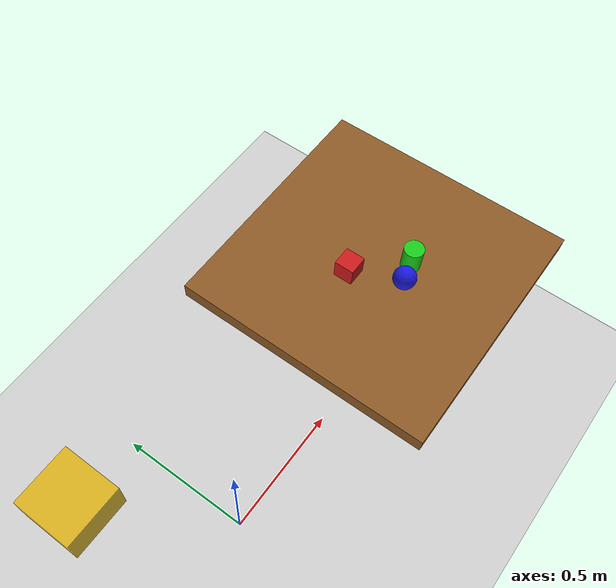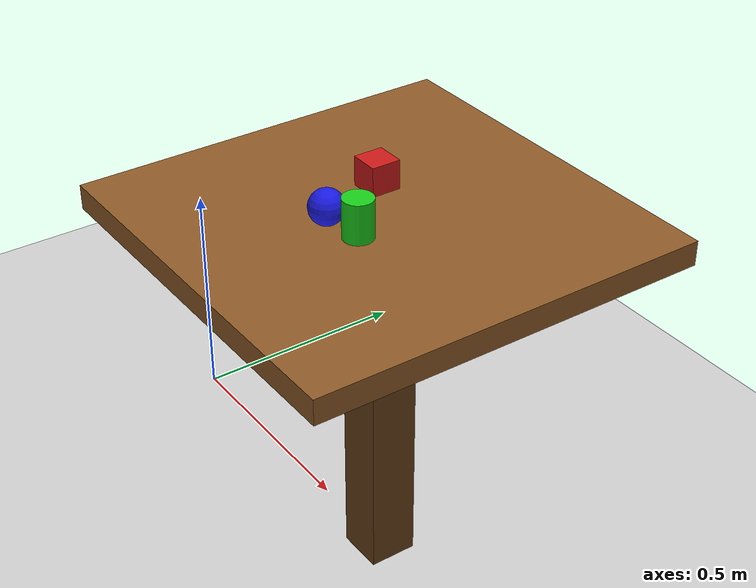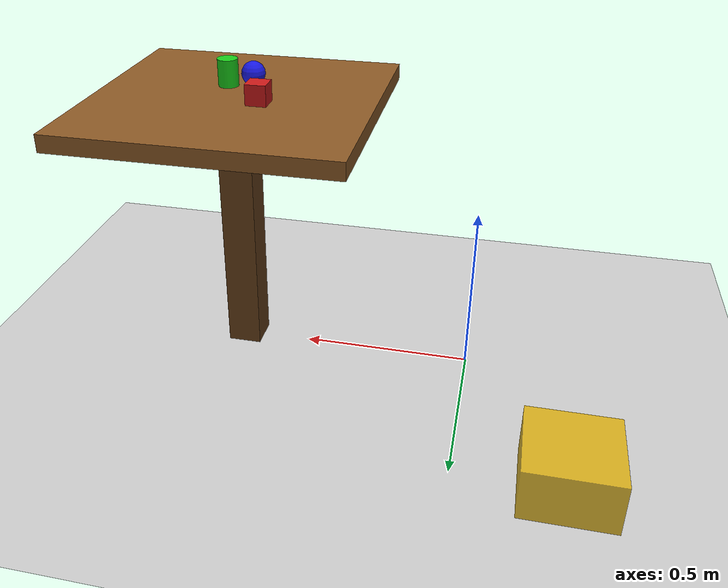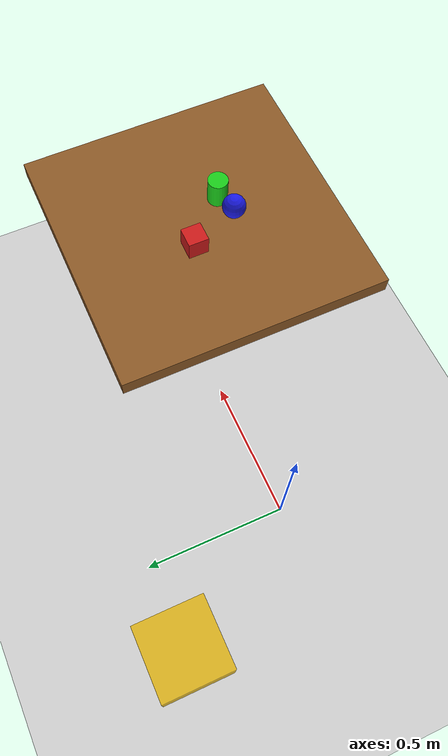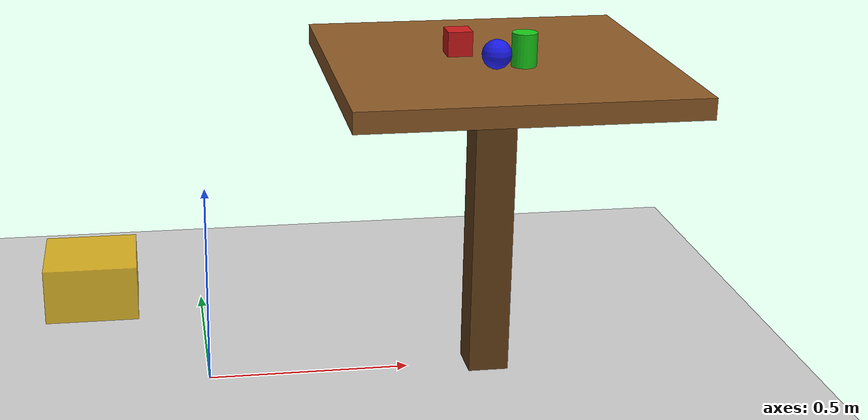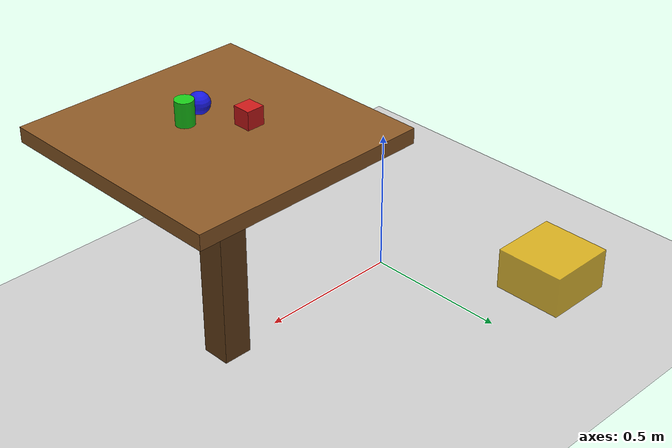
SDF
<?xml version="1.0"?>
<sdf version="1.6">
  <world name="pick_world">

    <include><uri>model://sun</uri></include>
    <include><uri>model://ground_plane</uri></include>

    <physics type="ode">
      <real_time_update_rate>1000</real_time_update_rate>
      <max_step_size>0.001</max_step_size>
      <real_time_factor>1</real_time_factor>
    </physics>

    <!-- Table top: static single-link model at surface height -->
    <model name="work_table">
      <static>true</static>
      <pose>0.7 0.0 0.775 0 0 0</pose>
      <link name="link">
        <collision name="col"><geometry><box><size>0.80 0.80 0.05</size></box></geometry></collision>
        <visual name="vis">
          <geometry><box><size>0.80 0.80 0.05</size></box></geometry>
          <material>
            <ambient>0.55 0.35 0.15 1</ambient>
            <diffuse>0.55 0.35 0.15 1</diffuse>
            <specular>0.1 0.1 0.1 1</specular>
          </material>
        </visual>
      </link>
    </model>

    <!-- Table pedestal: separate static model -->
    <model name="table_pedestal">
      <static>true</static>
      <pose>0.7 0.0 0.375 0 0 0</pose>
      <link name="link">
        <collision name="col"><geometry><box><size>0.10 0.10 0.75</size></box></geometry></collision>
        <visual name="vis">
          <geometry><box><size>0.10 0.10 0.75</size></box></geometry>
          <material>
            <ambient>0.4 0.25 0.10 1</ambient>
            <diffuse>0.4 0.25 0.10 1</diffuse>
          </material>
        </visual>
      </link>
    </model>

    <!-- ── Pick object 1: red box — on table surface (z = 0.8 + 0.03) ── -->
    <model name="pick_object_1">
      <pose>0.62 0.05 0.83 0 0 0</pose>
      <link name="link">
        <inertial><mass>0.1</mass><inertia><ixx>1e-4</ixx><iyy>1e-4</iyy><izz>1e-4</izz></inertia></inertial>
        <collision name="col"><geometry><box><size>0.06 0.06 0.06</size></box></geometry></collision>
        <visual name="vis">
          <geometry><box><size>0.06 0.06 0.06</size></box></geometry>
          <material><ambient>0.8 0.1 0.1 1</ambient><diffuse>0.8 0.1 0.1 1</diffuse></material>
        </visual>
      </link>
    </model>

    <!-- ── Pick object 2: green cylinder ─────────────────────────────── -->
    <model name="pick_object_2">
      <pose>0.75 -0.08 0.84 0 0 0</pose>
      <link name="link">
        <inertial><mass>0.1</mass><inertia><ixx>1e-4</ixx><iyy>1e-4</iyy><izz>1e-4</izz></inertia></inertial>
        <collision name="col"><geometry><cylinder><radius>0.03</radius><length>0.08</length></cylinder></geometry></collision>
        <visual name="vis">
          <geometry><cylinder><radius>0.03</radius><length>0.08</length></cylinder></geometry>
          <material><ambient>0.1 0.8 0.1 1</ambient><diffuse>0.1 0.8 0.1 1</diffuse></material>
        </visual>
      </link>
    </model>

    <!-- ── Pick object 3: blue sphere ────────────────────────────────── -->
    <model name="pick_object_3">
      <pose>0.68 -0.10 0.835 0 0 0</pose>
      <link name="link">
        <inertial><mass>0.05</mass><inertia><ixx>1e-5</ixx><iyy>1e-5</iyy><izz>1e-5</izz></inertia></inertial>
        <collision name="col"><geometry><sphere><radius>0.035</radius></sphere></geometry></collision>
        <visual name="vis">
          <geometry><sphere><radius>0.035</radius></sphere></geometry>
          <material><ambient>0.1 0.1 0.9 1</ambient><diffuse>0.1 0.1 0.9 1</diffuse></material>
        </visual>
      </link>
    </model>

    <!-- ── Drop bin ────────────────────────────────────────────────────── -->
    <model name="drop_bin">
      <static>true</static>
      <pose>-0.3 0.5 0.075 0 0 0</pose>
      <link name="link">
        <collision name="col"><geometry><box><size>0.25 0.25 0.15</size></box></geometry></collision>
        <visual name="vis">
          <geometry><box><size>0.25 0.25 0.15</size></box></geometry>
          <material><ambient>0.9 0.7 0.0 0.8</ambient><diffuse>0.9 0.7 0.0 0.8</diffuse></material>
        </visual>
      </link>
    </model>

  </world>
</sdf>
